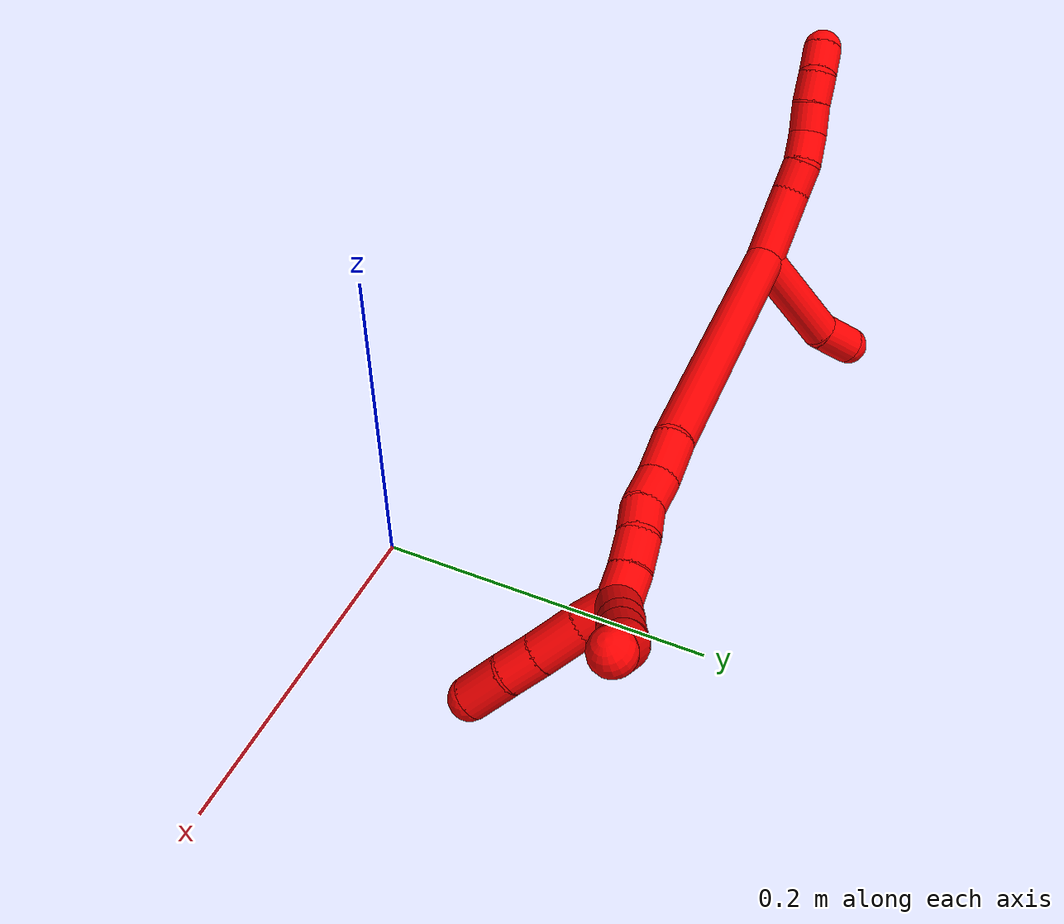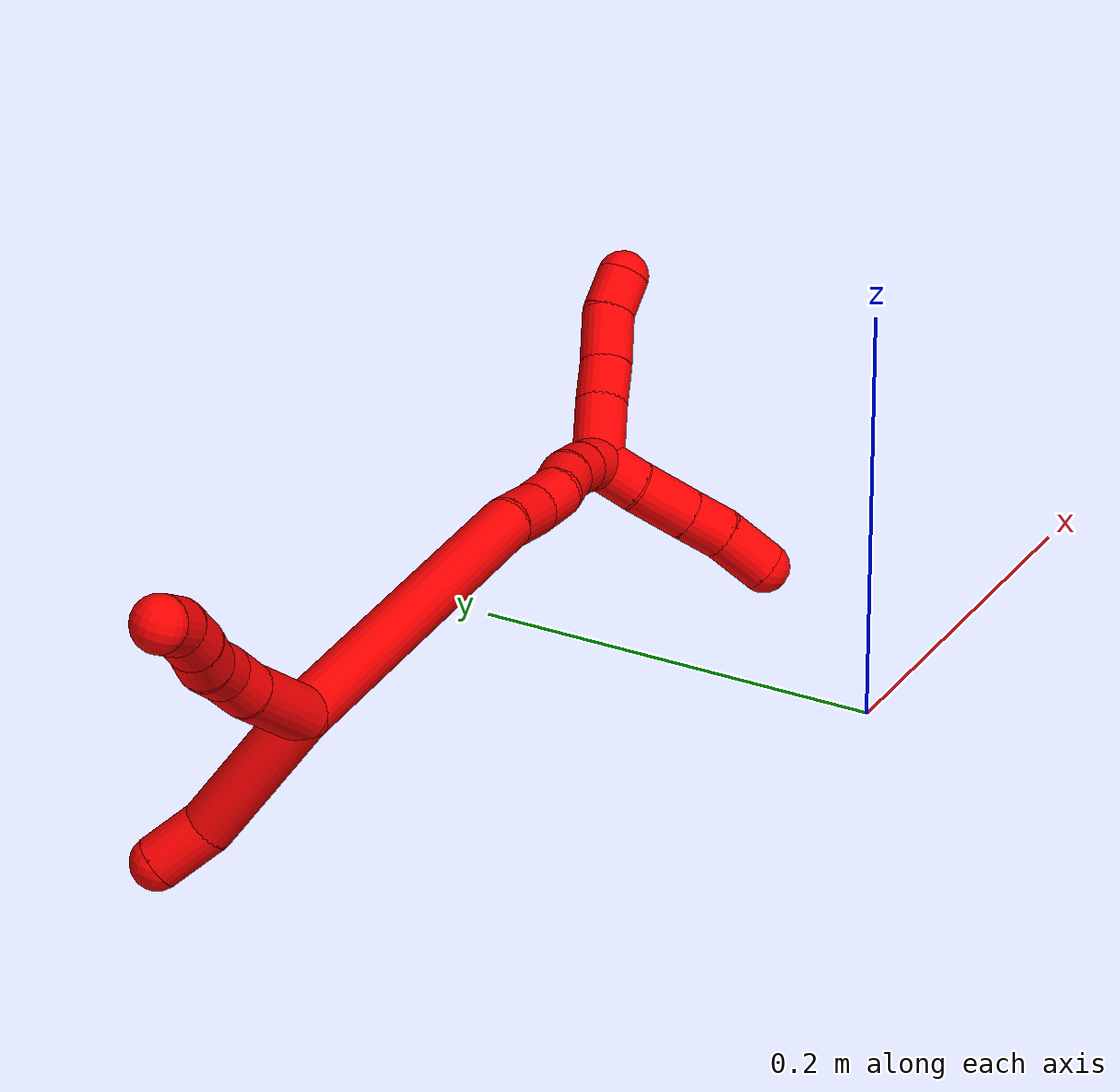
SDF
<sdf version="1.7">
 <world name="default">
  <model name="2">
   <static>0</static>
   <link name="2">
    <collision name="collision-cylinder-e_1_2_8">
     <pose>-0.022144 -0.006129 -0.008044 2.49053 -1.1424 -2.17435</pose>
     <geometry><cylinder><radius>0.0125</radius><length>0.048688</length></cylinder></geometry>
     <surface>
      <friction><ode><mu>1.16</mu><mu2>1.16</mu2><slip1>0</slip1><slip2>0</slip2></ode></friction>
      <contact><ode><kp>1e+06</kp><kd>1</kd><max_vel>0</max_vel><min_depth>0.001</min_depth></ode></contact>
     </surface>
    </collision>
    <visual name="visual-cylinder-e_1_2_8">
     <pose>-0.022144 -0.006129 -0.008044 2.49053 -1.1424 -2.17435</pose>
     <geometry><cylinder><radius>0.0125</radius><length>0.048688</length></cylinder></geometry>
     <material><ambient>1 0 0 1</ambient></material>
    </visual>
    <collision name="collision-cylinder-e_2_8_9">
     <pose>-0.052879 -0.015421 -0.020661 2.5364 -0.996328 -2.0995</pose>
     <geometry><cylinder><radius>0.0125</radius><length>0.020466</length></cylinder></geometry>
     <surface>
      <friction><ode><mu>1.16</mu><mu2>1.16</mu2><slip1>0</slip1><slip2>0</slip2></ode></friction>
      <contact><ode><kp>1e+06</kp><kd>1</kd><max_vel>0</max_vel><min_depth>0.001</min_depth></ode></contact>
     </surface>
    </collision>
    <visual name="visual-cylinder-e_2_8_9">
     <pose>-0.052879 -0.015421 -0.020661 2.5364 -0.996328 -2.0995</pose>
     <geometry><cylinder><radius>0.0125</radius><length>0.020466</length></cylinder></geometry>
     <material><ambient>1 0 0 1</ambient></material>
    </visual>
    <collision name="collision-cylinder-e_3_9_10">
     <pose>-0.071087 -0.019376 -0.028945 2.93139 -1.19505 -2.83401</pose>
     <geometry><cylinder><radius>0.0125</radius><length>0.020679</length></cylinder></geometry>
     <surface>
      <friction><ode><mu>1.16</mu><mu2>1.16</mu2><slip1>0</slip1><slip2>0</slip2></ode></friction>
      <contact><ode><kp>1e+06</kp><kd>1</kd><max_vel>0</max_vel><min_depth>0.001</min_depth></ode></contact>
     </surface>
    </collision>
    <visual name="visual-cylinder-e_3_9_10">
     <pose>-0.071087 -0.019376 -0.028945 2.93139 -1.19505 -2.83401</pose>
     <geometry><cylinder><radius>0.0125</radius><length>0.020679</length></cylinder></geometry>
     <material><ambient>1 0 0 1</ambient></material>
    </visual>
    <collision name="collision-cylinder-e_4_10_11">
     <pose>-0.088787 -0.020891 -0.038531 3.01917 -0.938632 -2.90105</pose>
     <geometry><cylinder><radius>0.0125</radius><length>0.020035</length></cylinder></geometry>
     <surface>
      <friction><ode><mu>1.16</mu><mu2>1.16</mu2><slip1>0</slip1><slip2>0</slip2></ode></friction>
      <contact><ode><kp>1e+06</kp><kd>1</kd><max_vel>0</max_vel><min_depth>0.001</min_depth></ode></contact>
     </surface>
    </collision>
    <visual name="visual-cylinder-e_4_10_11">
     <pose>-0.088787 -0.020891 -0.038531 3.01917 -0.938632 -2.90105</pose>
     <geometry><cylinder><radius>0.0125</radius><length>0.020035</length></cylinder></geometry>
     <material><ambient>1 0 0 1</ambient></material>
    </visual>
    <collision name="collision-cylinder-e_5_11_12">
     <pose>-0.105436 -0.023112 -0.04939 2.84953 -1.02486 -2.63015</pose>
     <geometry><cylinder><radius>0.0125</radius><length>0.020048</length></cylinder></geometry>
     <surface>
      <friction><ode><mu>1.16</mu><mu2>1.16</mu2><slip1>0</slip1><slip2>0</slip2></ode></friction>
      <contact><ode><kp>1e+06</kp><kd>1</kd><max_vel>0</max_vel><min_depth>0.001</min_depth></ode></contact>
     </surface>
    </collision>
    <visual name="visual-cylinder-e_5_11_12">
     <pose>-0.105436 -0.023112 -0.04939 2.84953 -1.02486 -2.63015</pose>
     <geometry><cylinder><radius>0.0125</radius><length>0.020048</length></cylinder></geometry>
     <material><ambient>1 0 0 1</ambient></material>
    </visual>
    <collision name="collision-cylinder-e_6_12_6">
     <pose>-0.123723 -0.025001 -0.056863 2.98588 -1.31717 -2.94064</pose>
     <geometry><cylinder><radius>0.0125</radius><length>0.020084</length></cylinder></geometry>
     <surface>
      <friction><ode><mu>1.16</mu><mu2>1.16</mu2><slip1>0</slip1><slip2>0</slip2></ode></friction>
      <contact><ode><kp>1e+06</kp><kd>1</kd><max_vel>0</max_vel><min_depth>0.001</min_depth></ode></contact>
     </surface>
    </collision>
    <visual name="visual-cylinder-e_6_12_6">
     <pose>-0.123723 -0.025001 -0.056863 2.98588 -1.31717 -2.94064</pose>
     <geometry><cylinder><radius>0.0125</radius><length>0.020084</length></cylinder></geometry>
     <material><ambient>1 0 0 1</ambient></material>
    </visual>
    <collision name="collision-cylinder-e_1_2_13">
     <pose>0.003172 -0.013745 0.033203 0.392503 0.088045 0.017515</pose>
     <geometry><cylinder><radius>0.0125</radius><length>0.07215</length></cylinder></geometry>
     <surface>
      <friction><ode><mu>1.16</mu><mu2>1.16</mu2><slip1>0</slip1><slip2>0</slip2></ode></friction>
      <contact><ode><kp>1e+06</kp><kd>1</kd><max_vel>0</max_vel><min_depth>0.001</min_depth></ode></contact>
     </surface>
    </collision>
    <visual name="visual-cylinder-e_1_2_13">
     <pose>0.003172 -0.013745 0.033203 0.392503 0.088045 0.017515</pose>
     <geometry><cylinder><radius>0.0125</radius><length>0.07215</length></cylinder></geometry>
     <material><ambient>1 0 0 1</ambient></material>
    </visual>
    <collision name="collision-cylinder-e_2_13_5">
     <pose>0.003792 -0.035033 0.077829 0.58355 -0.184351 -0.055512</pose>
     <geometry><cylinder><radius>0.0125</radius><length>0.02785</length></cylinder></geometry>
     <surface>
      <friction><ode><mu>1.16</mu><mu2>1.16</mu2><slip1>0</slip1><slip2>0</slip2></ode></friction>
      <contact><ode><kp>1e+06</kp><kd>1</kd><max_vel>0</max_vel><min_depth>0.001</min_depth></ode></contact>
     </surface>
    </collision>
    <visual name="visual-cylinder-e_2_13_5">
     <pose>0.003792 -0.035033 0.077829 0.58355 -0.184351 -0.055512</pose>
     <geometry><cylinder><radius>0.0125</radius><length>0.02785</length></cylinder></geometry>
     <material><ambient>1 0 0 1</ambient></material>
    </visual>
    <collision name="collision-cylinder-e_1_2_14">
     <pose>0.089839 0.003317 -0.02909 -3.02804 1.25575 -2.98531</pose>
     <geometry><cylinder><radius>0.0125</radius><length>0.18898</length></cylinder></geometry>
     <surface>
      <friction><ode><mu>1.16</mu><mu2>1.16</mu2><slip1>0</slip1><slip2>0</slip2></ode></friction>
      <contact><ode><kp>1e+06</kp><kd>1</kd><max_vel>0</max_vel><min_depth>0.001</min_depth></ode></contact>
     </surface>
    </collision>
    <visual name="visual-cylinder-e_1_2_14">
     <pose>0.089839 0.003317 -0.02909 -3.02804 1.25575 -2.98531</pose>
     <geometry><cylinder><radius>0.0125</radius><length>0.18898</length></cylinder></geometry>
     <material><ambient>1 0 0 1</ambient></material>
    </visual>
    <collision name="collision-cylinder-e_2_14_15">
     <pose>0.193395 0.007566 -0.059592 -2.55835 1.44813 -2.48708</pose>
     <geometry><cylinder><radius>0.0125</radius><length>0.02764</length></cylinder></geometry>
     <surface>
      <friction><ode><mu>1.16</mu><mu2>1.16</mu2><slip1>0</slip1><slip2>0</slip2></ode></friction>
      <contact><ode><kp>1e+06</kp><kd>1</kd><max_vel>0</max_vel><min_depth>0.001</min_depth></ode></contact>
     </surface>
    </collision>
    <visual name="visual-cylinder-e_2_14_15">
     <pose>0.193395 0.007566 -0.059592 -2.55835 1.44813 -2.48708</pose>
     <geometry><cylinder><radius>0.0125</radius><length>0.02764</length></cylinder></geometry>
     <material><ambient>1 0 0 1</ambient></material>
    </visual>
    <collision name="collision-cylinder-e_3_15_16">
     <pose>0.21788 0.009515 -0.06377 -2.78929 1.30362 -2.68326</pose>
     <geometry><cylinder><radius>0.0125</radius><length>0.02233</length></cylinder></geometry>
     <surface>
      <friction><ode><mu>1.16</mu><mu2>1.16</mu2><slip1>0</slip1><slip2>0</slip2></ode></friction>
      <contact><ode><kp>1e+06</kp><kd>1</kd><max_vel>0</max_vel><min_depth>0.001</min_depth></ode></contact>
     </surface>
    </collision>
    <visual name="visual-cylinder-e_3_15_16">
     <pose>0.21788 0.009515 -0.06377 -2.78929 1.30362 -2.68326</pose>
     <geometry><cylinder><radius>0.0125</radius><length>0.02233</length></cylinder></geometry>
     <material><ambient>1 0 0 1</ambient></material>
    </visual>
    <collision name="collision-cylinder-e_4_16_17">
     <pose>0.238491 0.008807 -0.068348 2.38078 1.32194 2.19169</pose>
     <geometry><cylinder><radius>0.0125</radius><length>0.020311</length></cylinder></geometry>
     <surface>
      <friction><ode><mu>1.16</mu><mu2>1.16</mu2><slip1>0</slip1><slip2>0</slip2></ode></friction>
      <contact><ode><kp>1e+06</kp><kd>1</kd><max_vel>0</max_vel><min_depth>0.001</min_depth></ode></contact>
     </surface>
    </collision>
    <visual name="visual-cylinder-e_4_16_17">
     <pose>0.238491 0.008807 -0.068348 2.38078 1.32194 2.19169</pose>
     <geometry><cylinder><radius>0.0125</radius><length>0.020311</length></cylinder></geometry>
     <material><ambient>1 0 0 1</ambient></material>
    </visual>
    <collision name="collision-cylinder-e_5_17_18">
     <pose>0.258625 0.00685 -0.070292 2.08969 1.54479 2.06696</pose>
     <geometry><cylinder><radius>0.0125</radius><length>0.02059</length></cylinder></geometry>
     <surface>
      <friction><ode><mu>1.16</mu><mu2>1.16</mu2><slip1>0</slip1><slip2>0</slip2></ode></friction>
      <contact><ode><kp>1e+06</kp><kd>1</kd><max_vel>0</max_vel><min_depth>0.001</min_depth></ode></contact>
     </surface>
    </collision>
    <visual name="visual-cylinder-e_5_17_18">
     <pose>0.258625 0.00685 -0.070292 2.08969 1.54479 2.06696</pose>
     <geometry><cylinder><radius>0.0125</radius><length>0.02059</length></cylinder></geometry>
     <material><ambient>1 0 0 1</ambient></material>
    </visual>
    <collision name="collision-cylinder-e_6_18_1">
     <pose>0.278963 0.007374 -0.070444 -1.5956 1.49559 -1.52034</pose>
     <geometry><cylinder><radius>0.0125</radius><length>0.020149</length></cylinder></geometry>
     <surface>
      <friction><ode><mu>1.16</mu><mu2>1.16</mu2><slip1>0</slip1><slip2>0</slip2></ode></friction>
      <contact><ode><kp>1e+06</kp><kd>1</kd><max_vel>0</max_vel><min_depth>0.001</min_depth></ode></contact>
     </surface>
    </collision>
    <visual name="visual-cylinder-e_6_18_1">
     <pose>0.278963 0.007374 -0.070444 -1.5956 1.49559 -1.52034</pose>
     <geometry><cylinder><radius>0.0125</radius><length>0.020149</length></cylinder></geometry>
     <material><ambient>1 0 0 1</ambient></material>
    </visual>
    <collision name="collision-cylinder-e_1_1_19">
     <pose>0.298433 0.001807 -0.081291 2.613 0.64443 1.77922</pose>
     <geometry><cylinder><radius>0.0125</radius><length>0.031372</length></cylinder></geometry>
     <surface>
      <friction><ode><mu>1.16</mu><mu2>1.16</mu2><slip1>0</slip1><slip2>0</slip2></ode></friction>
      <contact><ode><kp>1e+06</kp><kd>1</kd><max_vel>0</max_vel><min_depth>0.001</min_depth></ode></contact>
     </surface>
    </collision>
    <visual name="visual-cylinder-e_1_1_19">
     <pose>0.298433 0.001807 -0.081291 2.613 0.64443 1.77922</pose>
     <geometry><cylinder><radius>0.0125</radius><length>0.031372</length></cylinder></geometry>
     <material><ambient>1 0 0 1</ambient></material>
    </visual>
    <collision name="collision-cylinder-e_2_19_20">
     <pose>0.313858 -0.008206 -0.099788 2.69326 0.614279 1.89507</pose>
     <geometry><cylinder><radius>0.0125</radius><length>0.020827</length></cylinder></geometry>
     <surface>
      <friction><ode><mu>1.16</mu><mu2>1.16</mu2><slip1>0</slip1><slip2>0</slip2></ode></friction>
      <contact><ode><kp>1e+06</kp><kd>1</kd><max_vel>0</max_vel><min_depth>0.001</min_depth></ode></contact>
     </surface>
    </collision>
    <visual name="visual-cylinder-e_2_19_20">
     <pose>0.313858 -0.008206 -0.099788 2.69326 0.614279 1.89507</pose>
     <geometry><cylinder><radius>0.0125</radius><length>0.020827</length></cylinder></geometry>
     <material><ambient>1 0 0 1</ambient></material>
    </visual>
    <collision name="collision-cylinder-e_3_20_21">
     <pose>0.32724 -0.017457 -0.117638 2.64155 0.566597 1.70149</pose>
     <geometry><cylinder><radius>0.0125</radius><length>0.0275</length></cylinder></geometry>
     <surface>
      <friction><ode><mu>1.16</mu><mu2>1.16</mu2><slip1>0</slip1><slip2>0</slip2></ode></friction>
      <contact><ode><kp>1e+06</kp><kd>1</kd><max_vel>0</max_vel><min_depth>0.001</min_depth></ode></contact>
     </surface>
    </collision>
    <visual name="visual-cylinder-e_3_20_21">
     <pose>0.32724 -0.017457 -0.117638 2.64155 0.566597 1.70149</pose>
     <geometry><cylinder><radius>0.0125</radius><length>0.0275</length></cylinder></geometry>
     <material><ambient>1 0 0 1</ambient></material>
    </visual>
    <collision name="collision-cylinder-e_4_21_4">
     <pose>0.340292 -0.024062 -0.136172 3.01738 0.592864 2.73989</pose>
     <geometry><cylinder><radius>0.0125</radius><length>0.020302</length></cylinder></geometry>
     <surface>
      <friction><ode><mu>1.16</mu><mu2>1.16</mu2><slip1>0</slip1><slip2>0</slip2></ode></friction>
      <contact><ode><kp>1e+06</kp><kd>1</kd><max_vel>0</max_vel><min_depth>0.001</min_depth></ode></contact>
     </surface>
    </collision>
    <visual name="visual-cylinder-e_4_21_4">
     <pose>0.340292 -0.024062 -0.136172 3.01738 0.592864 2.73989</pose>
     <geometry><cylinder><radius>0.0125</radius><length>0.020302</length></cylinder></geometry>
     <material><ambient>1 0 0 1</ambient></material>
    </visual>
    <collision name="collision-cylinder-e_1_1_22">
     <pose>0.294122 0.017473 -0.067208 -1.23558 0.476998 -0.342143</pose>
     <geometry><cylinder><radius>0.0125</radius><length>0.022271</length></cylinder></geometry>
     <surface>
      <friction><ode><mu>1.16</mu><mu2>1.16</mu2><slip1>0</slip1><slip2>0</slip2></ode></friction>
      <contact><ode><kp>1e+06</kp><kd>1</kd><max_vel>0</max_vel><min_depth>0.001</min_depth></ode></contact>
     </surface>
    </collision>
    <visual name="visual-cylinder-e_1_1_22">
     <pose>0.294122 0.017473 -0.067208 -1.23558 0.476998 -0.342143</pose>
     <geometry><cylinder><radius>0.0125</radius><length>0.022271</length></cylinder></geometry>
     <material><ambient>1 0 0 1</ambient></material>
    </visual>
    <collision name="collision-cylinder-e_2_22_23">
     <pose>0.307274 0.038381 -0.059956 -1.23799 0.581277 -0.419886</pose>
     <geometry><cylinder><radius>0.0125</radius><length>0.029285</length></cylinder></geometry>
     <surface>
      <friction><ode><mu>1.16</mu><mu2>1.16</mu2><slip1>0</slip1><slip2>0</slip2></ode></friction>
      <contact><ode><kp>1e+06</kp><kd>1</kd><max_vel>0</max_vel><min_depth>0.001</min_depth></ode></contact>
     </surface>
    </collision>
    <visual name="visual-cylinder-e_2_22_23">
     <pose>0.307274 0.038381 -0.059956 -1.23799 0.581277 -0.419886</pose>
     <geometry><cylinder><radius>0.0125</radius><length>0.029285</length></cylinder></geometry>
     <material><ambient>1 0 0 1</ambient></material>
    </visual>
    <collision name="collision-cylinder-e_3_23_24">
     <pose>0.320997 0.058494 -0.053226 -1.2614 0.564586 -0.417398</pose>
     <geometry><cylinder><radius>0.0125</radius><length>0.021243</length></cylinder></geometry>
     <surface>
      <friction><ode><mu>1.16</mu><mu2>1.16</mu2><slip1>0</slip1><slip2>0</slip2></ode></friction>
      <contact><ode><kp>1e+06</kp><kd>1</kd><max_vel>0</max_vel><min_depth>0.001</min_depth></ode></contact>
     </surface>
    </collision>
    <visual name="visual-cylinder-e_3_23_24">
     <pose>0.320997 0.058494 -0.053226 -1.2614 0.564586 -0.417398</pose>
     <geometry><cylinder><radius>0.0125</radius><length>0.021243</length></cylinder></geometry>
     <material><ambient>1 0 0 1</ambient></material>
    </visual>
    <collision name="collision-cylinder-e_4_24_3">
     <pose>0.332741 0.077988 -0.045163 -1.11761 0.461819 -0.291923</pose>
     <geometry><cylinder><radius>0.0125</radius><length>0.027201</length></cylinder></geometry>
     <surface>
      <friction><ode><mu>1.16</mu><mu2>1.16</mu2><slip1>0</slip1><slip2>0</slip2></ode></friction>
      <contact><ode><kp>1e+06</kp><kd>1</kd><max_vel>0</max_vel><min_depth>0.001</min_depth></ode></contact>
     </surface>
    </collision>
    <visual name="visual-cylinder-e_4_24_3">
     <pose>0.332741 0.077988 -0.045163 -1.11761 0.461819 -0.291923</pose>
     <geometry><cylinder><radius>0.0125</radius><length>0.027201</length></cylinder></geometry>
     <material><ambient>1 0 0 1</ambient></material>
    </visual>
    <collision name="collision-sphere-3">
     <pose>0.338801 0.088935 -0.039832 0 -0 0</pose>
     <geometry><sphere><radius>0.0125</radius></sphere></geometry>
     <surface>
      <friction><ode><mu>1.16</mu><mu2>1.16</mu2><slip1>0</slip1><slip2>0</slip2></ode></friction>
      <contact><ode><kp>1e+06</kp><kd>1</kd><max_vel>0</max_vel><min_depth>0.001</min_depth></ode></contact>
     </surface>
    </collision>
    <visual name="visual-sphere-3">
     <pose>0.338801 0.088935 -0.039832 0 -0 0</pose>
     <geometry><sphere><radius>0.0125</radius></sphere></geometry>
     <material><ambient>1 0 0 1</ambient></material>
    </visual>
    <collision name="collision-sphere-24">
     <pose>0.326681 0.067041 -0.050494 0 -0 0</pose>
     <geometry><sphere><radius>0.0125</radius></sphere></geometry>
     <surface>
      <friction><ode><mu>1.16</mu><mu2>1.16</mu2><slip1>0</slip1><slip2>0</slip2></ode></friction>
      <contact><ode><kp>1e+06</kp><kd>1</kd><max_vel>0</max_vel><min_depth>0.001</min_depth></ode></contact>
     </surface>
    </collision>
    <visual name="visual-sphere-24">
     <pose>0.326681 0.067041 -0.050494 0 -0 0</pose>
     <geometry><sphere><radius>0.0125</radius></sphere></geometry>
     <material><ambient>1 0 0 1</ambient></material>
    </visual>
    <collision name="collision-sphere-23">
     <pose>0.315314 0.049947 -0.055958 0 -0 0</pose>
     <geometry><sphere><radius>0.0125</radius></sphere></geometry>
     <surface>
      <friction><ode><mu>1.16</mu><mu2>1.16</mu2><slip1>0</slip1><slip2>0</slip2></ode></friction>
      <contact><ode><kp>1e+06</kp><kd>1</kd><max_vel>0</max_vel><min_depth>0.001</min_depth></ode></contact>
     </surface>
    </collision>
    <visual name="visual-sphere-23">
     <pose>0.315314 0.049947 -0.055958 0 -0 0</pose>
     <geometry><sphere><radius>0.0125</radius></sphere></geometry>
     <material><ambient>1 0 0 1</ambient></material>
    </visual>
    <collision name="collision-sphere-22">
     <pose>0.299234 0.026815 -0.063954 0 -0 0</pose>
     <geometry><sphere><radius>0.0125</radius></sphere></geometry>
     <surface>
      <friction><ode><mu>1.16</mu><mu2>1.16</mu2><slip1>0</slip1><slip2>0</slip2></ode></friction>
      <contact><ode><kp>1e+06</kp><kd>1</kd><max_vel>0</max_vel><min_depth>0.001</min_depth></ode></contact>
     </surface>
    </collision>
    <visual name="visual-sphere-22">
     <pose>0.299234 0.026815 -0.063954 0 -0 0</pose>
     <geometry><sphere><radius>0.0125</radius></sphere></geometry>
     <material><ambient>1 0 0 1</ambient></material>
    </visual>
    <collision name="collision-sphere-4">
     <pose>0.345964 -0.025105 -0.144526 0 -0 0</pose>
     <geometry><sphere><radius>0.0125</radius></sphere></geometry>
     <surface>
      <friction><ode><mu>1.16</mu><mu2>1.16</mu2><slip1>0</slip1><slip2>0</slip2></ode></friction>
      <contact><ode><kp>1e+06</kp><kd>1</kd><max_vel>0</max_vel><min_depth>0.001</min_depth></ode></contact>
     </surface>
    </collision>
    <visual name="visual-sphere-4">
     <pose>0.345964 -0.025105 -0.144526 0 -0 0</pose>
     <geometry><sphere><radius>0.0125</radius></sphere></geometry>
     <material><ambient>1 0 0 1</ambient></material>
    </visual>
    <collision name="collision-sphere-21">
     <pose>0.33462 -0.023019 -0.127818 0 -0 0</pose>
     <geometry><sphere><radius>0.0125</radius></sphere></geometry>
     <surface>
      <friction><ode><mu>1.16</mu><mu2>1.16</mu2><slip1>0</slip1><slip2>0</slip2></ode></friction>
      <contact><ode><kp>1e+06</kp><kd>1</kd><max_vel>0</max_vel><min_depth>0.001</min_depth></ode></contact>
     </surface>
    </collision>
    <visual name="visual-sphere-21">
     <pose>0.33462 -0.023019 -0.127818 0 -0 0</pose>
     <geometry><sphere><radius>0.0125</radius></sphere></geometry>
     <material><ambient>1 0 0 1</ambient></material>
    </visual>
    <collision name="collision-sphere-20">
     <pose>0.31986 -0.011894 -0.107457 0 -0 0</pose>
     <geometry><sphere><radius>0.0125</radius></sphere></geometry>
     <surface>
      <friction><ode><mu>1.16</mu><mu2>1.16</mu2><slip1>0</slip1><slip2>0</slip2></ode></friction>
      <contact><ode><kp>1e+06</kp><kd>1</kd><max_vel>0</max_vel><min_depth>0.001</min_depth></ode></contact>
     </surface>
    </collision>
    <visual name="visual-sphere-20">
     <pose>0.31986 -0.011894 -0.107457 0 -0 0</pose>
     <geometry><sphere><radius>0.0125</radius></sphere></geometry>
     <material><ambient>1 0 0 1</ambient></material>
    </visual>
    <collision name="collision-sphere-12">
     <pose>-0.114003 -0.024611 -0.054374 0 -0 0</pose>
     <geometry><sphere><radius>0.0125</radius></sphere></geometry>
     <surface>
      <friction><ode><mu>1.16</mu><mu2>1.16</mu2><slip1>0</slip1><slip2>0</slip2></ode></friction>
      <contact><ode><kp>1e+06</kp><kd>1</kd><max_vel>0</max_vel><min_depth>0.001</min_depth></ode></contact>
     </surface>
    </collision>
    <visual name="visual-sphere-12">
     <pose>-0.114003 -0.024611 -0.054374 0 -0 0</pose>
     <geometry><sphere><radius>0.0125</radius></sphere></geometry>
     <material><ambient>1 0 0 1</ambient></material>
    </visual>
    <collision name="collision-sphere-11">
     <pose>-0.096869 -0.021614 -0.044406 0 -0 0</pose>
     <geometry><sphere><radius>0.0125</radius></sphere></geometry>
     <surface>
      <friction><ode><mu>1.16</mu><mu2>1.16</mu2><slip1>0</slip1><slip2>0</slip2></ode></friction>
      <contact><ode><kp>1e+06</kp><kd>1</kd><max_vel>0</max_vel><min_depth>0.001</min_depth></ode></contact>
     </surface>
    </collision>
    <visual name="visual-sphere-11">
     <pose>-0.096869 -0.021614 -0.044406 0 -0 0</pose>
     <geometry><sphere><radius>0.0125</radius></sphere></geometry>
     <material><ambient>1 0 0 1</ambient></material>
    </visual>
    <collision name="collision-sphere-10">
     <pose>-0.080706 -0.020168 -0.032656 0 -0 0</pose>
     <geometry><sphere><radius>0.0125</radius></sphere></geometry>
     <surface>
      <friction><ode><mu>1.16</mu><mu2>1.16</mu2><slip1>0</slip1><slip2>0</slip2></ode></friction>
      <contact><ode><kp>1e+06</kp><kd>1</kd><max_vel>0</max_vel><min_depth>0.001</min_depth></ode></contact>
     </surface>
    </collision>
    <visual name="visual-sphere-10">
     <pose>-0.080706 -0.020168 -0.032656 0 -0 0</pose>
     <geometry><sphere><radius>0.0125</radius></sphere></geometry>
     <material><ambient>1 0 0 1</ambient></material>
    </visual>
    <collision name="collision-sphere-9">
     <pose>-0.061469 -0.018584 -0.025234 0 -0 0</pose>
     <geometry><sphere><radius>0.0125</radius></sphere></geometry>
     <surface>
      <friction><ode><mu>1.16</mu><mu2>1.16</mu2><slip1>0</slip1><slip2>0</slip2></ode></friction>
      <contact><ode><kp>1e+06</kp><kd>1</kd><max_vel>0</max_vel><min_depth>0.001</min_depth></ode></contact>
     </surface>
    </collision>
    <visual name="visual-sphere-9">
     <pose>-0.061469 -0.018584 -0.025234 0 -0 0</pose>
     <geometry><sphere><radius>0.0125</radius></sphere></geometry>
     <material><ambient>1 0 0 1</ambient></material>
    </visual>
    <collision name="collision-sphere-2">
     <geometry><sphere><radius>0.0125</radius></sphere></geometry>
     <surface>
      <friction><ode><mu>1.16</mu><mu2>1.16</mu2><slip1>0</slip1><slip2>0</slip2></ode></friction>
      <contact><ode><kp>1e+06</kp><kd>1</kd><max_vel>0</max_vel><min_depth>0.001</min_depth></ode></contact>
     </surface>
    </collision>
    <visual name="visual-sphere-2">
     <geometry><sphere><radius>0.0125</radius></sphere></geometry>
     <material><ambient>1 0 0 1</ambient></material>
    </visual>
    <collision name="collision-sphere-19">
     <pose>0.307856 -0.004517 -0.09212 0 -0 0</pose>
     <geometry><sphere><radius>0.0125</radius></sphere></geometry>
     <surface>
      <friction><ode><mu>1.16</mu><mu2>1.16</mu2><slip1>0</slip1><slip2>0</slip2></ode></friction>
      <contact><ode><kp>1e+06</kp><kd>1</kd><max_vel>0</max_vel><min_depth>0.001</min_depth></ode></contact>
     </surface>
    </collision>
    <visual name="visual-sphere-19">
     <pose>0.307856 -0.004517 -0.09212 0 -0 0</pose>
     <geometry><sphere><radius>0.0125</radius></sphere></geometry>
     <material><ambient>1 0 0 1</ambient></material>
    </visual>
    <collision name="collision-sphere-8">
     <pose>-0.044288 -0.012258 -0.016088 0 -0 0</pose>
     <geometry><sphere><radius>0.0125</radius></sphere></geometry>
     <surface>
      <friction><ode><mu>1.16</mu><mu2>1.16</mu2><slip1>0</slip1><slip2>0</slip2></ode></friction>
      <contact><ode><kp>1e+06</kp><kd>1</kd><max_vel>0</max_vel><min_depth>0.001</min_depth></ode></contact>
     </surface>
    </collision>
    <visual name="visual-sphere-8">
     <pose>-0.044288 -0.012258 -0.016088 0 -0 0</pose>
     <geometry><sphere><radius>0.0125</radius></sphere></geometry>
     <material><ambient>1 0 0 1</ambient></material>
    </visual>
    <collision name="collision-sphere-6">
     <pose>-0.133444 -0.025392 -0.059352 0 -0 0</pose>
     <geometry><sphere><radius>0.0125</radius></sphere></geometry>
     <surface>
      <friction><ode><mu>1.16</mu><mu2>1.16</mu2><slip1>0</slip1><slip2>0</slip2></ode></friction>
      <contact><ode><kp>1e+06</kp><kd>1</kd><max_vel>0</max_vel><min_depth>0.001</min_depth></ode></contact>
     </surface>
    </collision>
    <visual name="visual-sphere-6">
     <pose>-0.133444 -0.025392 -0.059352 0 -0 0</pose>
     <geometry><sphere><radius>0.0125</radius></sphere></geometry>
     <material><ambient>1 0 0 1</ambient></material>
    </visual>
    <collision name="collision-sphere-13">
     <pose>0.006344 -0.027491 0.066405 0 -0 0</pose>
     <geometry><sphere><radius>0.0125</radius></sphere></geometry>
     <surface>
      <friction><ode><mu>1.16</mu><mu2>1.16</mu2><slip1>0</slip1><slip2>0</slip2></ode></friction>
      <contact><ode><kp>1e+06</kp><kd>1</kd><max_vel>0</max_vel><min_depth>0.001</min_depth></ode></contact>
     </surface>
    </collision>
    <visual name="visual-sphere-13">
     <pose>0.006344 -0.027491 0.066405 0 -0 0</pose>
     <geometry><sphere><radius>0.0125</radius></sphere></geometry>
     <material><ambient>1 0 0 1</ambient></material>
    </visual>
    <collision name="collision-sphere-5">
     <pose>0.001239 -0.042576 0.089252 0 -0 0</pose>
     <geometry><sphere><radius>0.0125</radius></sphere></geometry>
     <surface>
      <friction><ode><mu>1.16</mu><mu2>1.16</mu2><slip1>0</slip1><slip2>0</slip2></ode></friction>
      <contact><ode><kp>1e+06</kp><kd>1</kd><max_vel>0</max_vel><min_depth>0.001</min_depth></ode></contact>
     </surface>
    </collision>
    <visual name="visual-sphere-5">
     <pose>0.001239 -0.042576 0.089252 0 -0 0</pose>
     <geometry><sphere><radius>0.0125</radius></sphere></geometry>
     <material><ambient>1 0 0 1</ambient></material>
    </visual>
    <collision name="collision-sphere-14">
     <pose>0.179678 0.006635 -0.05818 0 -0 0</pose>
     <geometry><sphere><radius>0.0125</radius></sphere></geometry>
     <surface>
      <friction><ode><mu>1.16</mu><mu2>1.16</mu2><slip1>0</slip1><slip2>0</slip2></ode></friction>
      <contact><ode><kp>1e+06</kp><kd>1</kd><max_vel>0</max_vel><min_depth>0.001</min_depth></ode></contact>
     </surface>
    </collision>
    <visual name="visual-sphere-14">
     <pose>0.179678 0.006635 -0.05818 0 -0 0</pose>
     <geometry><sphere><radius>0.0125</radius></sphere></geometry>
     <material><ambient>1 0 0 1</ambient></material>
    </visual>
    <collision name="collision-sphere-15">
     <pose>0.207111 0.008498 -0.061003 0 -0 0</pose>
     <geometry><sphere><radius>0.0125</radius></sphere></geometry>
     <surface>
      <friction><ode><mu>1.16</mu><mu2>1.16</mu2><slip1>0</slip1><slip2>0</slip2></ode></friction>
      <contact><ode><kp>1e+06</kp><kd>1</kd><max_vel>0</max_vel><min_depth>0.001</min_depth></ode></contact>
     </surface>
    </collision>
    <visual name="visual-sphere-15">
     <pose>0.207111 0.008498 -0.061003 0 -0 0</pose>
     <geometry><sphere><radius>0.0125</radius></sphere></geometry>
     <material><ambient>1 0 0 1</ambient></material>
    </visual>
    <collision name="collision-sphere-16">
     <pose>0.228649 0.010532 -0.066536 0 -0 0</pose>
     <geometry><sphere><radius>0.0125</radius></sphere></geometry>
     <surface>
      <friction><ode><mu>1.16</mu><mu2>1.16</mu2><slip1>0</slip1><slip2>0</slip2></ode></friction>
      <contact><ode><kp>1e+06</kp><kd>1</kd><max_vel>0</max_vel><min_depth>0.001</min_depth></ode></contact>
     </surface>
    </collision>
    <visual name="visual-sphere-16">
     <pose>0.228649 0.010532 -0.066536 0 -0 0</pose>
     <geometry><sphere><radius>0.0125</radius></sphere></geometry>
     <material><ambient>1 0 0 1</ambient></material>
    </visual>
    <collision name="collision-sphere-17">
     <pose>0.248334 0.007083 -0.070159 0 -0 0</pose>
     <geometry><sphere><radius>0.0125</radius></sphere></geometry>
     <surface>
      <friction><ode><mu>1.16</mu><mu2>1.16</mu2><slip1>0</slip1><slip2>0</slip2></ode></friction>
      <contact><ode><kp>1e+06</kp><kd>1</kd><max_vel>0</max_vel><min_depth>0.001</min_depth></ode></contact>
     </surface>
    </collision>
    <visual name="visual-sphere-17">
     <pose>0.248334 0.007083 -0.070159 0 -0 0</pose>
     <geometry><sphere><radius>0.0125</radius></sphere></geometry>
     <material><ambient>1 0 0 1</ambient></material>
    </visual>
    <collision name="collision-sphere-18">
     <pose>0.268917 0.006618 -0.070425 0 -0 0</pose>
     <geometry><sphere><radius>0.0125</radius></sphere></geometry>
     <surface>
      <friction><ode><mu>1.16</mu><mu2>1.16</mu2><slip1>0</slip1><slip2>0</slip2></ode></friction>
      <contact><ode><kp>1e+06</kp><kd>1</kd><max_vel>0</max_vel><min_depth>0.001</min_depth></ode></contact>
     </surface>
    </collision>
    <visual name="visual-sphere-18">
     <pose>0.268917 0.006618 -0.070425 0 -0 0</pose>
     <geometry><sphere><radius>0.0125</radius></sphere></geometry>
     <material><ambient>1 0 0 1</ambient></material>
    </visual>
    <collision name="collision-sphere-1">
     <pose>0.289009 0.008131 -0.070462 0 -0 0</pose>
     <geometry><sphere><radius>0.0125</radius></sphere></geometry>
     <surface>
      <friction><ode><mu>1.16</mu><mu2>1.16</mu2><slip1>0</slip1><slip2>0</slip2></ode></friction>
      <contact><ode><kp>1e+06</kp><kd>1</kd><max_vel>0</max_vel><min_depth>0.001</min_depth></ode></contact>
     </surface>
    </collision>
    <visual name="visual-sphere-1">
     <pose>0.289009 0.008131 -0.070462 0 -0 0</pose>
     <geometry><sphere><radius>0.0125</radius></sphere></geometry>
     <material><ambient>1 0 0 1</ambient></material>
    </visual>
    <inertial>
     <pose>0.128707 0.00126 -0.038423 0 -0 0</pose>
     <mass>0.75</mass>
     <inertia>
      <ixx>-0.000147</ixx>
      <ixy>0</ixy>
      <ixz>0</ixz>
      <iyy>0.00061</iyy>
      <iyz>0</iyz>
      <izz>-0.000559</izz>
     </inertia>
    </inertial>
   </link>
   <pose>-0.254906 0.14342 0.086118 -2.91212 0.276399 0.149299</pose>
  </model>
 </world>
</sdf>
